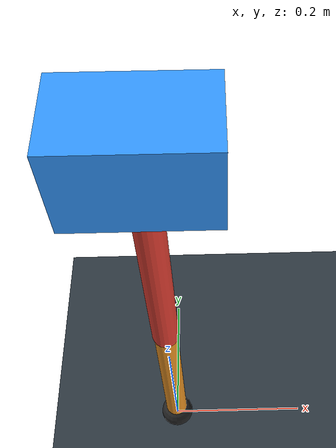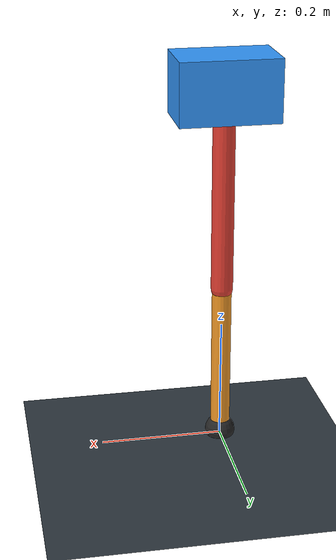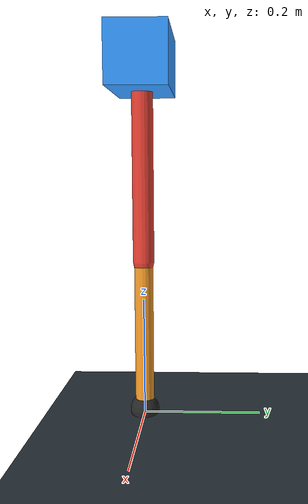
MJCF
<mujoco model="single_axis_two_bar">
  <compiler angle="radian" inertiafromgeom="true"/>
  <option timestep="0.001" integrator="implicitfast" gravity="0 0 -9.81"/>
  <default>
    <joint damping="0.08"/>
    <geom friction="1.2 0.01 0.0001" condim="3"/>
  </default>
  <worldbody>
    <geom name="floor" type="plane" size="5 5 0.1" rgba="0.18 0.22 0.25 1"/>
    <body name="carriage" pos="0 0 0.6009604141051363">
      <joint name="pole_slide" type="slide" axis="0 0 1"/>
      <geom name="payload" type="box" size="0.08 0.05 0.05" mass="2.5642960082243835" rgba="0.2 0.6 1 1"/>
      <body name="thigh" pos="0 0 0">
        <joint name="hip" type="hinge" axis="0 1 0"/>
        <geom name="thigh_link" type="capsule" fromto="0 0 0 0 0 -0.3354748208304128" size="0.018" mass="0.2390302427503181" rgba="0.9 0.25 0.2 1"/>
        <body name="shank" pos="0 0 -0.3354748208304128">
          <joint name="knee" type="hinge" axis="0 1 0"/>
          <geom name="shank_link" type="capsule" fromto="0 0 0 0 0 -0.2582988019583875" size="0.016" mass="0.18404130951288517" rgba="0.95 0.6 0.15 1"/>
          <geom name="foot" type="sphere" pos="0 0 -0.2582988019583875" size="0.025" mass="0.03" rgba="0.15 0.15 0.15 1"/>
          <site name="toe" pos="0 0 -0.2582988019583875" size="0.008"/>
        </body>
      </body>
    </body>
  </worldbody>
  <actuator>
    <motor name="hip_motor" joint="hip" ctrlrange="-27.95514644291354 27.95514644291354"/>
    <motor name="knee_motor" joint="knee" ctrlrange="-105.93216157560478 105.93216157560478"/>
  </actuator>
</mujoco>
